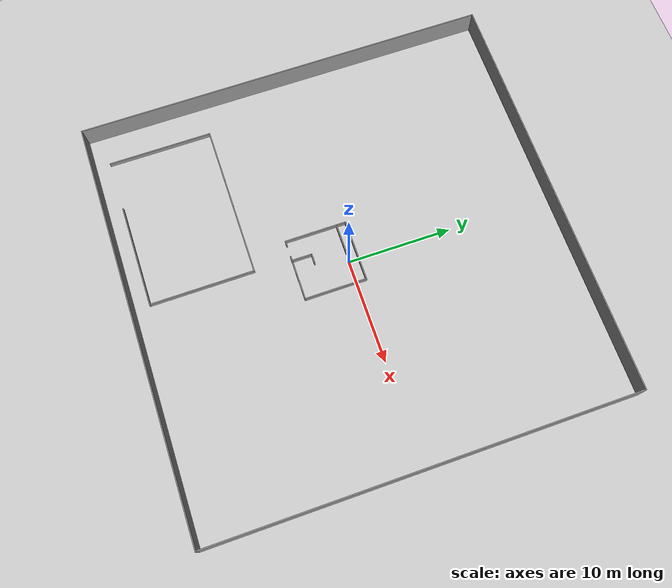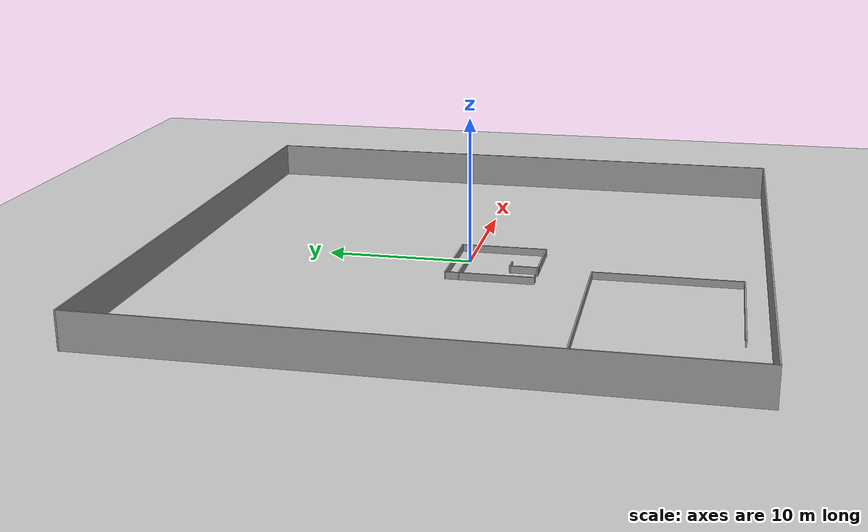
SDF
<sdf version="1.6">
 <world name="default">
  <model name="ground_plane">
   <static>1</static>
   <link name="link">
    <collision name="collision">
     <geometry><plane><normal>0 0 1</normal><size>40 40</size></plane></geometry>
     <surface>
      <contact><collide_bitmask>65535</collide_bitmask></contact>
      <friction><ode><mu>100</mu><mu2>50</mu2></ode></friction>
     </surface>
     <max_contacts>15</max_contacts>
    </collision>
    <visual name="visual">
     <cast_shadows>0</cast_shadows>
     <geometry><plane><normal>0 0 1</normal><size>40 40</size></plane></geometry>
     <material>
      <script><uri>file://media/materials/scripts/gazebo.material</uri><name>Gazebo/Grey</name></script>
     </material>
    </visual>
   </link>
  </model>
  <model name="outsidewall.sdf">
   <link name="Wall_3">
    <collision name="Wall_3_Collision">
     <geometry><box><size>40 0.10 2.5</size></box></geometry>
     <pose>0 0 1.25 0 -0 0</pose>
    </collision>
    <visual name="Wall_3_Visual">
     <pose>0 0 1.25 0 -0 0</pose>
     <geometry><box><size>40 0.10 2.5</size></box></geometry>
     <material>
      <script><uri>file://media/materials/scripts/gazebo.material</uri><name>Gazebo/Grey</name></script>
      <ambient>1 1 1 1</ambient>
     </material>
     <meta><layer>0</layer></meta>
    </visual>
    <pose>0 19.95 0 0 -0 0</pose>
   </link>
   <link name="Wall_5">
    <collision name="Wall_5_Collision">
     <geometry><box><size>40 0.10 2.5</size></box></geometry>
     <pose>0 0 1.25 0 -0 0</pose>
    </collision>
    <visual name="Wall_5_Visual">
     <pose>0 0 1.25 0 -0 0</pose>
     <geometry><box><size>40 0.10 2.5</size></box></geometry>
     <material>
      <script><uri>file://media/materials/scripts/gazebo.material</uri><name>Gazebo/Grey</name></script>
      <ambient>1 1 1 1</ambient>
     </material>
     <meta><layer>0</layer></meta>
    </visual>
    <pose>-19.95 0 0 0 -0 1.5707</pose>
   </link>
   <link name="Wall_6">
    <collision name="Wall_6_Collision">
     <geometry><box><size>40 0.10 2.5</size></box></geometry>
     <pose>0 0 1.25 0 -0 0</pose>
    </collision>
    <visual name="Wall_6_Visual">
     <pose>0 0 1.25 0 -0 0</pose>
     <geometry><box><size>40 0.10 2.5</size></box></geometry>
     <material>
      <script><uri>file://media/materials/scripts/gazebo.material</uri><name>Gazebo/Grey</name></script>
      <ambient>1 1 1 1</ambient>
     </material>
     <meta><layer>0</layer></meta>
    </visual>
    <pose>0 -19.95 0 0 -0 0</pose>
   </link>
   <link name="Wall_7">
    <collision name="Wall_7_Collision">
     <geometry><box><size>40 0.10 2.5</size></box></geometry>
     <pose>0 0 1.25 0 -0 0</pose>
    </collision>
    <visual name="Wall_7_Visual">
     <pose>0 0 1.25 0 -0 0</pose>
     <geometry><box><size>40 0.10 2.5</size></box></geometry>
     <material>
      <script><uri>file://media/materials/scripts/gazebo.material</uri><name>Gazebo/Grey</name></script>
      <ambient>1 1 1 1</ambient>
     </material>
     <meta><layer>0</layer></meta>
    </visual>
    <pose>19.95 0 0 0 -0 1.5707</pose>
   </link>
   <static>1</static>
  </model>
  <model name="shape5">
   <pose>-0.799999 -2 0 0 -0 0</pose>
   <link name="Wall_10">
    <collision name="Wall_10_Collision">
     <geometry><box><size>6 0.1 0.5</size></box></geometry>
     <pose>0 0 0.25 0 -0 0</pose>
    </collision>
    <visual name="Wall_10_Visual">
     <pose>0 0 0.25 0 -0 0</pose>
     <geometry><box><size>6 0.1 0.5</size></box></geometry>
     <material>
      <script><uri>file://media/materials/scripts/gazebo.material</uri><name>Gazebo/Grey</name></script>
      <ambient>1 1 1 1</ambient>
     </material>
     <meta><layer>0</layer></meta>
    </visual>
    <pose>-0 2.95 0 0 -0 0</pose>
   </link>
   <link name="Wall_11">
    <collision name="Wall_11_Collision">
     <geometry><box><size>6 0.1 0.5</size></box></geometry>
     <pose>0 0 0.25 0 -0 0</pose>
    </collision>
    <visual name="Wall_11_Visual">
     <pose>0 0 0.25 0 -0 0</pose>
     <geometry><box><size>6 0.1 0.5</size></box></geometry>
     <material>
      <script><uri>file://media/materials/scripts/gazebo.material</uri><name>Gazebo/Grey</name></script>
      <ambient>1 1 1 1</ambient>
     </material>
     <meta><layer>0</layer></meta>
    </visual>
    <pose>2.95 0 0 0 -0 -1.5708</pose>
   </link>
   <link name="Wall_12">
    <collision name="Wall_12_Collision">
     <geometry><box><size>4 0.1 0.5</size></box></geometry>
     <pose>0 0 0.25 0 -0 0</pose>
    </collision>
    <visual name="Wall_12_Visual">
     <pose>0 0 0.25 0 -0 0</pose>
     <geometry><box><size>4 0.1 0.5</size></box></geometry>
     <material>
      <script><uri>file://media/materials/scripts/gazebo.material</uri><name>Gazebo/Grey</name></script>
      <ambient>1 1 1 1</ambient>
     </material>
     <meta><layer>0</layer></meta>
    </visual>
    <pose>1 -2.95 0 0 -0 3.14159</pose>
   </link>
   <link name="Wall_13">
    <collision name="Wall_13_Collision">
     <geometry><box><size>2 0.1 0.5</size></box></geometry>
     <pose>0 0 0.25 0 -0 0</pose>
    </collision>
    <visual name="Wall_13_Visual">
     <pose>0 0 0.25 0 -0 0</pose>
     <geometry><box><size>2 0.1 0.5</size></box></geometry>
     <material>
      <script><uri>file://media/materials/scripts/gazebo.material</uri><name>Gazebo/Grey</name></script>
      <ambient>1 1 1 1</ambient>
     </material>
     <meta><layer>0</layer></meta>
    </visual>
    <pose>-0.95 -2 0 0 -0 1.5708</pose>
   </link>
   <link name="Wall_14">
    <collision name="Wall_14_Collision">
     <geometry><box><size>1.00029 0.1 0.5</size></box></geometry>
     <pose>0 0 0.25 0 -0 0</pose>
    </collision>
    <visual name="Wall_14_Visual">
     <pose>0 0 0.25 0 -0 0</pose>
     <geometry><box><size>1.00029 0.1 0.5</size></box></geometry>
     <material>
      <script><uri>file://media/materials/scripts/gazebo.material</uri><name>Gazebo/Grey</name></script>
      <ambient>1 1 1 1</ambient>
     </material>
     <meta><layer>0</layer></meta>
    </visual>
    <pose>-0.5 -1.05 0 0 -0 0</pose>
   </link>
   <link name="Wall_18">
    <collision name="Wall_18_Collision">
     <geometry><box><size>1 0.1 0.5</size></box></geometry>
     <pose>0 0 0.25 0 -0 0</pose>
    </collision>
    <visual name="Wall_18_Visual">
     <pose>0 0 0.25 0 -0 0</pose>
     <geometry><box><size>1 0.1 0.5</size></box></geometry>
     <material>
      <script><uri>file://media/materials/scripts/gazebo.material</uri><name>Gazebo/Grey</name></script>
      <ambient>1 1 1 1</ambient>
     </material>
     <meta><layer>0</layer></meta>
    </visual>
    <pose>-2.95 2.5 0 0 -0 -1.5708</pose>
   </link>
   <link name="Wall_19">
    <collision name="Wall_19_Collision">
     <geometry><box><size>3 0.1 0.5</size></box></geometry>
     <pose>0 0 0.25 0 -0 0</pose>
    </collision>
    <visual name="Wall_19_Visual">
     <pose>0 0 0.25 0 -0 0</pose>
     <geometry><box><size>3 0.1 0.5</size></box></geometry>
     <material>
      <script><uri>file://media/materials/scripts/gazebo.material</uri><name>Gazebo/Grey</name></script>
      <ambient>1 1 1 1</ambient>
     </material>
     <meta><layer>0</layer></meta>
    </visual>
    <pose>-1.5 2.05 0 0 -0 0</pose>
   </link>
   <link name="Wall_21">
    <collision name="Wall_21_Collision">
     <geometry><box><size>5.1 0.1 0.5</size></box></geometry>
     <pose>0 0 0.25 0 -0 0</pose>
    </collision>
    <visual name="Wall_21_Visual">
     <pose>0 0 0.25 0 -0 0</pose>
     <geometry><box><size>5.1 0.1 0.5</size></box></geometry>
     <material>
      <script><uri>file://media/materials/scripts/gazebo.material</uri><name>Gazebo/Grey</name></script>
      <ambient>1 1 1 1</ambient>
     </material>
     <meta><layer>0</layer></meta>
    </visual>
    <pose>-2.95 -0.45 0 0 -0 -1.5708</pose>
   </link>
   <link name="Wall_22">
    <collision name="Wall_22_Collision">
     <geometry><box><size>0.5 0.1 0.5</size></box></geometry>
     <pose>0 0 0.25 0 -0 0</pose>
    </collision>
    <visual name="Wall_22_Visual">
     <pose>0 0 0.25 0 -0 0</pose>
     <geometry><box><size>0.5 0.1 0.5</size></box></geometry>
     <material>
      <script><uri>file://media/materials/scripts/gazebo.material</uri><name>Gazebo/Grey</name></script>
      <ambient>1 1 1 1</ambient>
     </material>
     <meta><layer>0</layer></meta>
    </visual>
    <pose>-2.75 -2.95 0 0 -0 0</pose>
   </link>
   <link name="Wall_24">
    <collision name="Wall_24_Collision">
     <geometry><box><size>0.5 0.1 0.5</size></box></geometry>
     <pose>0 0 0.25 0 -0 0</pose>
    </collision>
    <visual name="Wall_24_Visual">
     <pose>0 0 0.25 0 -0 0</pose>
     <geometry><box><size>0.5 0.1 0.5</size></box></geometry>
     <material>
      <script><uri>file://media/materials/scripts/gazebo.material</uri><name>Gazebo/Grey</name></script>
      <ambient>1 1 1 1</ambient>
     </material>
     <meta><layer>0</layer></meta>
    </visual>
    <pose>-1.15 -2.95 0 0 -0 3.14159</pose>
   </link>
   <static>1</static>
  </model>
  <model name="shape3">
   <pose>-9.4 -13.5 0 0 -0 0</pose>
   <link name="Wall_10">
    <collision name="Wall_10_Collision">
     <geometry><box><size>10 0.1 0.5</size></box></geometry>
     <pose>0 0 0.25 0 -0 0</pose>
    </collision>
    <visual name="Wall_10_Visual">
     <pose>0 0 0.25 0 -0 0</pose>
     <geometry><box><size>10 0.1 0.5</size></box></geometry>
     <material>
      <script><uri>file://media/materials/scripts/gazebo.material</uri><name>Gazebo/Grey</name></script>
      <ambient>1 1 1 1</ambient>
     </material>
     <meta><layer>0</layer></meta>
    </visual>
    <pose>2.5 -4.95 0 0 -0 3.14159</pose>
   </link>
   <link name="Wall_12">
    <collision name="Wall_12_Collision">
     <geometry><box><size>10 0.1 0.5</size></box></geometry>
     <pose>0 0 0.25 0 -0 0</pose>
    </collision>
    <visual name="Wall_12_Visual">
     <pose>0 0 0.25 0 -0 0</pose>
     <geometry><box><size>10 0.1 0.5</size></box></geometry>
     <material>
      <script><uri>file://media/materials/scripts/gazebo.material</uri><name>Gazebo/Grey</name></script>
      <ambient>1 1 1 1</ambient>
     </material>
     <meta><layer>0</layer></meta>
    </visual>
    <pose>-7.45 -0 0 0 -0 -1.5708</pose>
   </link>
   <link name="Wall_8">
    <collision name="Wall_8_Collision">
     <geometry><box><size>15 0.1 0.5</size></box></geometry>
     <pose>0 0 0.25 0 -0 0</pose>
    </collision>
    <visual name="Wall_8_Visual">
     <pose>0 0 0.25 0 -0 0</pose>
     <geometry><box><size>15 0.1 0.5</size></box></geometry>
     <material>
      <script><uri>file://media/materials/scripts/gazebo.material</uri><name>Gazebo/Grey</name></script>
      <ambient>1 1 1 1</ambient>
     </material>
     <meta><layer>0</layer></meta>
    </visual>
    <pose>-0 4.95 0 0 -0 0</pose>
   </link>
   <link name="Wall_9">
    <collision name="Wall_9_Collision">
     <geometry><box><size>10 0.1 0.5</size></box></geometry>
     <pose>0 0 0.25 0 -0 0</pose>
    </collision>
    <visual name="Wall_9_Visual">
     <pose>0 0 0.25 0 -0 0</pose>
     <geometry><box><size>10 0.1 0.5</size></box></geometry>
     <material>
      <script><uri>file://media/materials/scripts/gazebo.material</uri><name>Gazebo/Grey</name></script>
      <ambient>1 1 1 1</ambient>
     </material>
     <meta><layer>0</layer></meta>
    </visual>
    <pose>7.45 -0 0 0 -0 -1.5708</pose>
   </link>
   <static>1</static>
  </model>
 </world>
</sdf>
